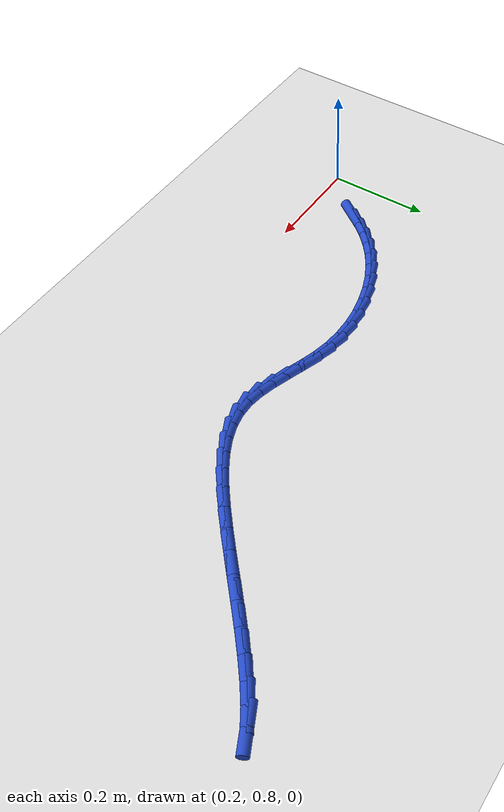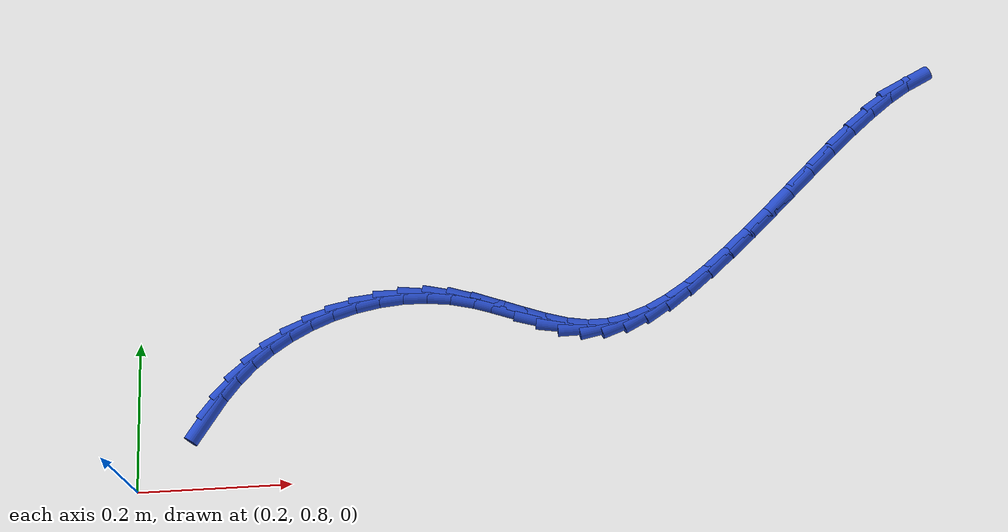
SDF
<sdf version="1.6">
 <world name="default">
  <model name="ground_plane">
   <static>1</static>
   <link name="link">
    <collision name="collision">
     <geometry><plane><normal>0 0 1</normal><size>100 100</size></plane></geometry>
     <surface><friction><ode><mu>100</mu><mu2>50</mu2></ode></friction></surface>
    </collision>
    <visual name="visual">
     <cast_shadows>0</cast_shadows>
     <geometry><plane><normal>0 0 1</normal><size>100 100</size></plane></geometry>
     <material>
      <script><uri>file://media/materials/scripts/gazebo.material</uri><name>Gazebo/WhiteGlow</name></script>
     </material>
    </visual>
   </link>
  </model>
  <model name="line">
   <link name="link_30">
    <pose>0.2920963566116275 0.8943400617567853 0.01 0 1.57 0.9667870633385875</pose>
    <collision name="collision">
     <geometry><cylinder><radius>0.01</radius><length>0.08</length></cylinder></geometry>
    </collision>
    <visual name="visual">
     <material>
      <script><name>Gazebo/Blue</name><uri>file://media/materials/scripts/gazebo.material</uri></script>
     </material>
     <geometry><cylinder><radius>0.01</radius><length>0.08</length></cylinder></geometry>
    </visual>
   </link>
   <link name="link_31">
    <pose>0.3091718597653822 0.9190857762680864 0.01 0 1.57 0.8820388716126148</pose>
    <collision name="collision">
     <geometry><cylinder><radius>0.01</radius><length>0.08</length></cylinder></geometry>
    </collision>
    <visual name="visual">
     <material>
      <script><name>Gazebo/Blue</name><uri>file://media/materials/scripts/gazebo.material</uri></script>
     </material>
     <geometry><cylinder><radius>0.01</radius><length>0.08</length></cylinder></geometry>
    </visual>
   </link>
   <link name="link_32">
    <pose>0.32817633007698443 0.9421704849209072 0.01 0 1.57 0.7875932329580316</pose>
    <collision name="collision">
     <geometry><cylinder><radius>0.01</radius><length>0.08</length></cylinder></geometry>
    </collision>
    <visual name="visual">
     <material>
      <script><name>Gazebo/Blue</name><uri>file://media/materials/scripts/gazebo.material</uri></script>
     </material>
     <geometry><cylinder><radius>0.01</radius><length>0.08</length></cylinder></geometry>
    </visual>
   </link>
   <link name="link_33">
    <pose>0.34932719223374353 0.9634144067269346 0.01 0 1.57 0.6853426953823873</pose>
    <collision name="collision">
     <geometry><cylinder><radius>0.01</radius><length>0.08</length></cylinder></geometry>
    </collision>
    <visual name="visual">
     <material>
      <script><name>Gazebo/Blue</name><uri>file://media/materials/scripts/gazebo.material</uri></script>
     </material>
     <geometry><cylinder><radius>0.01</radius><length>0.08</length></cylinder></geometry>
    </visual>
   </link>
   <link name="link_34">
    <pose>0.372840938359978 0.982637746894926 0.01 0 1.57 0.5810526060741649</pose>
    <collision name="collision">
     <geometry><cylinder><radius>0.01</radius><length>0.08</length></cylinder></geometry>
    </collision>
    <visual name="visual">
     <material>
      <script><name>Gazebo/Blue</name><uri>file://media/materials/scripts/gazebo.material</uri></script>
     </material>
     <geometry><cylinder><radius>0.01</radius><length>0.08</length></cylinder></geometry>
    </visual>
   </link>
   <link name="link_35">
    <pose>0.3987600243658531 0.9996581347115356 0.01 0 1.57 0.48162295023544005</pose>
    <collision name="collision">
     <geometry><cylinder><radius>0.01</radius><length>0.08</length></cylinder></geometry>
    </collision>
    <visual name="visual">
     <material>
      <script><name>Gazebo/Blue</name><uri>file://media/materials/scripts/gazebo.material</uri></script>
     </material>
     <geometry><cylinder><radius>0.01</radius><length>0.08</length></cylinder></geometry>
    </visual>
   </link>
   <link name="link_36">
    <pose>0.42674963361512547 1.0142876154262326 0.01 0 1.57 0.3857102588434882</pose>
    <collision name="collision">
     <geometry><cylinder><radius>0.01</radius><length>0.08</length></cylinder></geometry>
    </collision>
    <visual name="visual">
     <material>
      <script><name>Gazebo/Blue</name><uri>file://media/materials/scripts/gazebo.material</uri></script>
     </material>
     <geometry><cylinder><radius>0.01</radius><length>0.08</length></cylinder></geometry>
    </visual>
   </link>
   <link name="link_37">
    <pose>0.45642556815300156 1.0263375033921582 0.01 0 1.57 0.2911070284629027</pose>
    <collision name="collision">
     <geometry><cylinder><radius>0.01</radius><length>0.08</length></cylinder></geometry>
    </collision>
    <visual name="visual">
     <material>
      <script><name>Gazebo/Blue</name><uri>file://media/materials/scripts/gazebo.material</uri></script>
     </material>
     <geometry><cylinder><radius>0.01</radius><length>0.08</length></cylinder></geometry>
    </visual>
   </link>
   <link name="link_38">
    <pose>0.48740363002468773 1.0356191129624528 0.01 0 1.57 0.19575047061418677</pose>
    <collision name="collision">
     <geometry><cylinder><radius>0.01</radius><length>0.08</length></cylinder></geometry>
    </collision>
    <visual name="visual">
     <material>
      <script><name>Gazebo/Blue</name><uri>file://media/materials/scripts/gazebo.material</uri></script>
     </material>
     <geometry><cylinder><radius>0.01</radius><length>0.08</length></cylinder></geometry>
    </visual>
   </link>
   <link name="link_39">
    <pose>0.5192996212753912 1.0419437584902573 0.01 0 1.57 0.09771503438905982</pose>
    <collision name="collision">
     <geometry><cylinder><radius>0.01</radius><length>0.08</length></cylinder></geometry>
    </collision>
    <visual name="visual">
     <material>
      <script><name>Gazebo/Blue</name><uri>file://media/materials/scripts/gazebo.material</uri></script>
     </material>
     <geometry><cylinder><radius>0.01</radius><length>0.08</length></cylinder></geometry>
    </visual>
   </link>
   <link name="link_40">
    <pose>0.5517293439503183 1.0451227543287132 0.01 0 1.57 -0.004768013115533468</pose>
    <collision name="collision">
     <geometry><cylinder><radius>0.01</radius><length>0.08</length></cylinder></geometry>
    </collision>
    <visual name="visual">
     <material>
      <script><name>Gazebo/Blue</name><uri>file://media/materials/scripts/gazebo.material</uri></script>
     </material>
     <geometry><cylinder><radius>0.01</radius><length>0.08</length></cylinder></geometry>
    </visual>
   </link>
   <link name="link_41">
    <pose>0.5843086000946759 1.0449674148309607 0.01 0 1.57 -0.11323762619417058</pose>
    <collision name="collision">
     <geometry><cylinder><radius>0.01</radius><length>0.08</length></cylinder></geometry>
    </collision>
    <visual name="visual">
     <material>
      <script><name>Gazebo/Blue</name><uri>file://media/materials/scripts/gazebo.material</uri></script>
     </material>
     <geometry><cylinder><radius>0.01</radius><length>0.08</length></cylinder></geometry>
    </visual>
   </link>
   <link name="link_42">
    <pose>0.6166531917536708 1.0412890543501414 0.01 0 1.57 -0.22597381143919948</pose>
    <collision name="collision">
     <geometry><cylinder><radius>0.01</radius><length>0.08</length></cylinder></geometry>
    </collision>
    <visual name="visual">
     <material>
      <script><name>Gazebo/Blue</name><uri>file://media/materials/scripts/gazebo.material</uri></script>
     </material>
     <geometry><cylinder><radius>0.01</radius><length>0.08</length></cylinder></geometry>
    </visual>
   </link>
   <link name="link_43">
    <pose>0.6483998674388132 1.0339904801967965 0.01 0 1.57 -0.31101951139018374</pose>
    <collision name="collision">
     <geometry><cylinder><radius>0.01</radius><length>0.08</length></cylinder></geometry>
    </collision>
    <visual name="visual">
     <material>
      <script><name>Gazebo/Blue</name><uri>file://media/materials/scripts/gazebo.material</uri></script>
     </material>
     <geometry><cylinder><radius>0.01</radius><length>0.08</length></cylinder></geometry>
    </visual>
   </link>
   <link name="link_44">
    <pose>0.6794241948713509 1.024017648223401 0.01 0 1.57 -0.34902840243961847</pose>
    <collision name="collision">
     <geometry><cylinder><radius>0.01</radius><length>0.08</length></cylinder></geometry>
    </collision>
    <visual name="visual">
     <material>
      <script><name>Gazebo/Blue</name><uri>file://media/materials/scripts/gazebo.material</uri></script>
     </material>
     <geometry><cylinder><radius>0.01</radius><length>0.08</length></cylinder></geometry>
    </visual>
   </link>
   <link name="link_45">
    <pose>0.7097536235604166 1.0129799251770222 0.01 0 1.57 -0.3396768665185254</pose>
    <collision name="collision">
     <geometry><cylinder><radius>0.01</radius><length>0.08</length></cylinder></geometry>
    </collision>
    <visual name="visual">
     <material>
      <script><name>Gazebo/Blue</name><uri>file://media/materials/scripts/gazebo.material</uri></script>
     </material>
     <geometry><cylinder><radius>0.01</radius><length>0.08</length></cylinder></geometry>
    </visual>
   </link>
   <link name="link_46">
    <pose>0.73941803755924 1.0024973117530096 0.01 0 1.57 -0.27872707697941873</pose>
    <collision name="collision">
     <geometry><cylinder><radius>0.01</radius><length>0.08</length></cylinder></geometry>
    </collision>
    <visual name="visual">
     <material>
      <script><name>Gazebo/Blue</name><uri>file://media/materials/scripts/gazebo.material</uri></script>
     </material>
     <geometry><cylinder><radius>0.01</radius><length>0.08</length></cylinder></geometry>
    </visual>
   </link>
   <link name="link_47">
    <pose>0.7684473209210515 0.9941898086467134 0.01 0 1.57 -0.15743979384755247</pose>
    <collision name="collision">
     <geometry><cylinder><radius>0.01</radius><length>0.08</length></cylinder></geometry>
    </collision>
    <visual name="visual">
     <material>
      <script><name>Gazebo/Blue</name><uri>file://media/materials/scripts/gazebo.material</uri></script>
     </material>
     <geometry><cylinder><radius>0.01</radius><length>0.08</length></cylinder></geometry>
    </visual>
   </link>
   <link name="link_48">
    <pose>0.796871360530564 0.9896773883994754 0.01 0 1.57 0.01872770850836995</pose>
    <collision name="collision">
     <geometry><cylinder><radius>0.01</radius><length>0.08</length></cylinder></geometry>
    </collision>
    <visual name="visual">
     <material>
      <script><name>Gazebo/Blue</name><uri>file://media/materials/scripts/gazebo.material</uri></script>
     </material>
     <geometry><cylinder><radius>0.01</radius><length>0.08</length></cylinder></geometry>
    </visual>
   </link>
   <link name="link_49">
    <pose>0.8247582921056165 0.9901997077904828 0.01 0 1.57 0.19572246314309089</pose>
    <collision name="collision">
     <geometry><cylinder><radius>0.01</radius><length>0.08</length></cylinder></geometry>
    </collision>
    <visual name="visual">
     <material>
      <script><name>Gazebo/Blue</name><uri>file://media/materials/scripts/gazebo.material</uri></script>
     </material>
     <geometry><cylinder><radius>0.01</radius><length>0.08</length></cylinder></geometry>
    </visual>
   </link>
   <link name="link_50">
    <pose>0.8523104347957068 0.9956622110253481 0.01 0 1.57 0.34987194286308243</pose>
    <collision name="collision">
     <geometry><cylinder><radius>0.01</radius><length>0.08</length></cylinder></geometry>
    </collision>
    <visual name="visual">
     <material>
      <script><name>Gazebo/Blue</name><uri>file://media/materials/scripts/gazebo.material</uri></script>
     </material>
     <geometry><cylinder><radius>0.01</radius><length>0.08</length></cylinder></geometry>
    </visual>
   </link>
   <link name="link_51">
    <pose>0.8797595165468808 1.005677924791043 0.01 0 1.57 0.4749851984436684</pose>
    <collision name="collision">
     <geometry><cylinder><radius>0.01</radius><length>0.08</length></cylinder></geometry>
    </collision>
    <visual name="visual">
     <material>
      <script><name>Gazebo/Blue</name><uri>file://media/materials/scripts/gazebo.material</uri></script>
     </material>
     <geometry><cylinder><radius>0.01</radius><length>0.08</length></cylinder></geometry>
    </visual>
   </link>
   <link name="link_52">
    <pose>0.9073372653051858 1.0198598757745394 0.01 0 1.57 0.5713622906258419</pose>
    <collision name="collision">
     <geometry><cylinder><radius>0.01</radius><length>0.08</length></cylinder></geometry>
    </collision>
    <visual name="visual">
     <material>
      <script><name>Gazebo/Blue</name><uri>file://media/materials/scripts/gazebo.material</uri></script>
     </material>
     <geometry><cylinder><radius>0.01</radius><length>0.08</length></cylinder></geometry>
    </visual>
   </link>
   <link name="link_53">
    <pose>0.9352754090166673 1.0378210906628087 0.01 0 1.57 0.6425089868736221</pose>
    <collision name="collision">
     <geometry><cylinder><radius>0.01</radius><length>0.08</length></cylinder></geometry>
    </collision>
    <visual name="visual">
     <material>
      <script><name>Gazebo/Blue</name><uri>file://media/materials/scripts/gazebo.material</uri></script>
     </material>
     <geometry><cylinder><radius>0.01</radius><length>0.08</length></cylinder></geometry>
    </visual>
   </link>
   <link name="link_54">
    <pose>0.9638056756273718 1.0591745961428223 0.01 0 1.57 0.6926650609308639</pose>
    <collision name="collision">
     <geometry><cylinder><radius>0.01</radius><length>0.08</length></cylinder></geometry>
    </collision>
    <visual name="visual">
     <material>
      <script><name>Gazebo/Blue</name><uri>file://media/materials/scripts/gazebo.material</uri></script>
     </material>
     <geometry><cylinder><radius>0.01</radius><length>0.08</length></cylinder></geometry>
    </visual>
   </link>
   <link name="link_55">
    <pose>0.9931597930833457 1.0835334189015522 0.01 0 1.57 0.7257654783107281</pose>
    <collision name="collision">
     <geometry><cylinder><radius>0.01</radius><length>0.08</length></cylinder></geometry>
    </collision>
    <visual name="visual">
     <material>
      <script><name>Gazebo/Blue</name><uri>file://media/materials/scripts/gazebo.material</uri></script>
     </material>
     <geometry><cylinder><radius>0.01</radius><length>0.08</length></cylinder></geometry>
    </visual>
   </link>
   <link name="link_56">
    <pose>1.023509365200127 1.1104632139518917 0.01 0 1.57 0.7458977917200066</pose>
    <collision name="collision">
     <geometry><cylinder><radius>0.01</radius><length>0.08</length></cylinder></geometry>
    </collision>
    <visual name="visual">
     <material>
      <script><name>Gazebo/Blue</name><uri>file://media/materials/scripts/gazebo.material</uri></script>
     </material>
     <geometry><cylinder><radius>0.01</radius><length>0.08</length></cylinder></geometry>
    </visual>
   </link>
   <link name="link_57">
    <pose>1.054630714018377 1.1392181946401305 0.01 0 1.57 0.7559839830697123</pose>
    <collision name="collision">
     <geometry><cylinder><radius>0.01</radius><length>0.08</length></cylinder></geometry>
    </collision>
    <visual name="visual">
     <material>
      <script><name>Gazebo/Blue</name><uri>file://media/materials/scripts/gazebo.material</uri></script>
     </material>
     <geometry><cylinder><radius>0.01</radius><length>0.08</length></cylinder></geometry>
    </visual>
   </link>
   <link name="link_58">
    <pose>1.086140526977499 1.1689267985510052 0.01 0 1.57 0.7572804624513156</pose>
    <collision name="collision">
     <geometry><cylinder><radius>0.01</radius><length>0.08</length></cylinder></geometry>
    </collision>
    <visual name="visual">
     <material>
      <script><name>Gazebo/Blue</name><uri>file://media/materials/scripts/gazebo.material</uri></script>
     </material>
     <geometry><cylinder><radius>0.01</radius><length>0.08</length></cylinder></geometry>
    </visual>
   </link>
   <link name="link_59">
    <pose>1.1176550462431876 1.1987171124390479 0.01 0 1.57 0.7499040288163119</pose>
    <collision name="collision">
     <geometry><cylinder><radius>0.01</radius><length>0.08</length></cylinder></geometry>
    </collision>
    <visual name="visual">
     <material>
      <script><name>Gazebo/Blue</name><uri>file://media/materials/scripts/gazebo.material</uri></script>
     </material>
     <geometry><cylinder><radius>0.01</radius><length>0.08</length></cylinder></geometry>
    </visual>
   </link>
   <link name="link_60">
    <pose>1.148790513981138 1.2277172230587903 0.01 0 1.57 0.7328624229318897</pose>
    <collision name="collision">
     <geometry><cylinder><radius>0.01</radius><length>0.08</length></cylinder></geometry>
    </collision>
    <visual name="visual">
     <material>
      <script><name>Gazebo/Blue</name><uri>file://media/materials/scripts/gazebo.material</uri></script>
     </material>
     <geometry><cylinder><radius>0.01</radius><length>0.08</length></cylinder></geometry>
    </visual>
   </link>
   <link name="link_61">
    <pose>1.1791631723570435 1.255055217164764 0.01 0 1.57 0.7037345023651381</pose>
    <collision name="collision">
     <geometry><cylinder><radius>0.01</radius><length>0.08</length></cylinder></geometry>
    </collision>
    <visual name="visual">
     <material>
      <script><name>Gazebo/Blue</name><uri>file://media/materials/scripts/gazebo.material</uri></script>
     </material>
     <geometry><cylinder><radius>0.01</radius><length>0.08</length></cylinder></geometry>
    </visual>
   </link>
   <link name="link_62">
    <pose>1.2083892635366 1.2798591815115017 0.01 0 1.57 0.6578150701129689</pose>
    <collision name="collision">
     <geometry><cylinder><radius>0.01</radius><length>0.08</length></cylinder></geometry>
    </collision>
    <visual name="visual">
     <material>
      <script><name>Gazebo/Blue</name><uri>file://media/materials/scripts/gazebo.material</uri></script>
     </material>
     <geometry><cylinder><radius>0.01</radius><length>0.08</length></cylinder></geometry>
    </visual>
   </link>
   <link name="link_63">
    <pose>1.2360850296855024 1.3012572028535354 0.01 0 1.57 0.5861845242551736</pose>
    <collision name="collision">
     <geometry><cylinder><radius>0.01</radius><length>0.08</length></cylinder></geometry>
    </collision>
    <visual name="visual">
     <material>
      <script><name>Gazebo/Blue</name><uri>file://media/materials/scripts/gazebo.material</uri></script>
     </material>
     <geometry><cylinder><radius>0.01</radius><length>0.08</length></cylinder></geometry>
    </visual>
   </link>
   <link name="link_64">
    <pose>1.2618667129694452 1.318377367945397 0.01 0 1.57 0.47140048195691125</pose>
    <collision name="collision">
     <geometry><cylinder><radius>0.01</radius><length>0.08</length></cylinder></geometry>
    </collision>
    <visual name="visual">
     <material>
      <script><name>Gazebo/Blue</name><uri>file://media/materials/scripts/gazebo.material</uri></script>
     </material>
     <geometry><cylinder><radius>0.01</radius><length>0.08</length></cylinder></geometry>
    </visual>
   </link>
  </model>
 </world>
</sdf>
